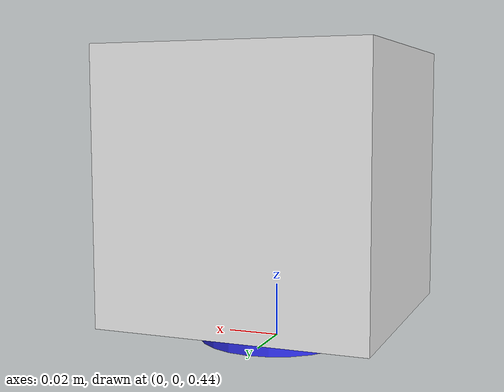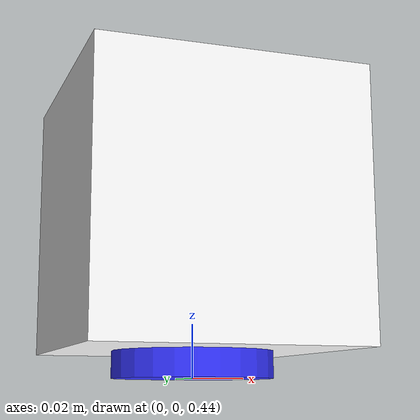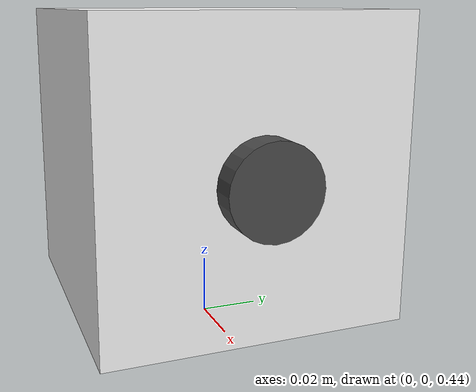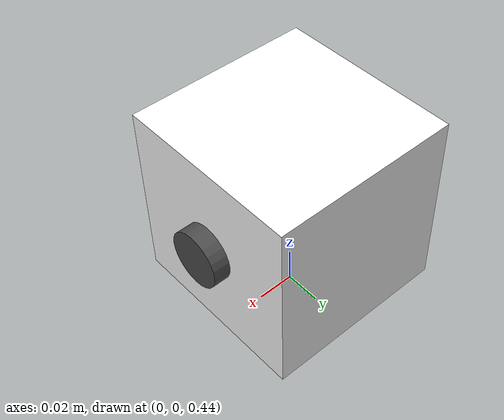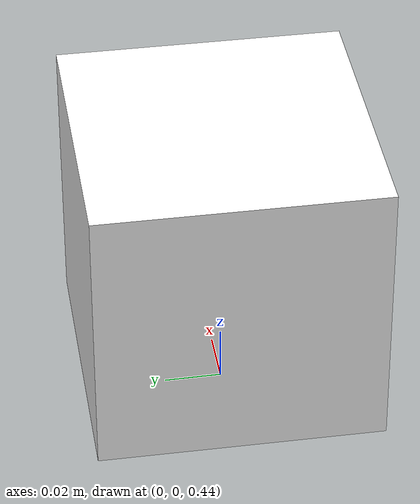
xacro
<?xml version="1.0"?>
<robot xmlns:xacro="http://www.ros.org/wiki/xacro"  name="cubesat">

    <xacro:include filename="cubesat_include.xacro" />

    <link name="world"></link>

    <joint name="1U_joint" type="floating">
    	<origin xyz="0 0 0.5" rpy="0 0 0"/>
    	<parent link="world"/>
    	<child link="1U_link"/>
    </joint>

    <link name="1U_link">
        <visual>
            <origin xyz="0 0 0" rpy="0 0 0"/>
            <geometry>
                <box size="${U_aresta} ${U_aresta} ${U_aresta}" />
            </geometry>
            <material name="white"/>
        </visual>
        <collision>
            <origin xyz="0 0 0" rpy="0 0 0"/>
            <geometry>
                <box size="${U_aresta} ${U_aresta} ${U_aresta}" />
            </geometry>
        </collision>
        <xacro:inertial_box mass="1" x="0.1" y="0.1" z="0.1">
            <origin xyz="0 0 0.0" rpy="0 0 0"/>
        </xacro:inertial_box>
    </link>

    <joint name="camera_joint" type="fixed">
        <origin xyz="${(U_aresta+cam_len)/2} 0 0" rpy="0 0 0"/>
        <parent link="1U_link"/>
        <child link="camera_link"/>
    </joint>

    <link name="camera_link">
        <visual>
            <origin xyz="0 0 0" rpy="0 ${pi/2} 0"/>
            <geometry>
                <cylinder radius="${cam_radius}" length="${cam_len}"/>
            </geometry>
		<material name="gray"/>
        </visual>
        <collision>
            <origin xyz="0 0 0" rpy="0 ${pi/2} 0"/>
            <geometry>
                <cylinder radius="${cam_radius}" length="${cam_len}"/>
            </geometry>
        </collision>
        <xacro:inertial_cylinder mass="${cam_mas}" length="${cam_len}"  radius="${cam_radius}">
            <origin xyz="0 0 0.0" rpy="0 ${pi/2} 0"/>
        </xacro:inertial_cylinder>
    </link>

	<joint name="RDR3_joint" type="continuous">
		<origin xyz="0 0 0" rpy="0 0 0"/>
		<parent link="1U_link"/>
		<child link="RDR3_link"/>
		<axis xyz ="0 0 1" rpy = "0 0 0"/>
		<limit effort="10000" velocity="10000"/>
		<joint_properties damping ="0.0" friction="0.0"/>
	</joint>

    <link name="RDR3_link">
        <visual>
            <origin xyz="0 0 -${(U_aresta+RDR_length)/2}" rpy="0 0 0"/>
		<geometry>
			<cylinder radius="${RDR_radius}" length="${RDR_length}"/>
		</geometry>
	 <material name="blue"/>
        </visual>
        <collision>
            <origin xyz="0 0 -${(U_aresta+RDR_length)/2}" rpy="0 0 0"/>
		<geometry>
			<cylinder radius="${RDR_radius}" length="${RDR_length}"/>
		</geometry>
        </collision>
        <inertial>
            <origin xyz="0 0 -${(U_aresta+RDR_length)/2}" rpy="0 0 0"/>
            <mass value="${RDR_mass}" />
            <inertia ixx="${(1/12) * RDR_mass * (3*RDR_radius*RDR_radius + RDR_length*RDR_length)}" ixy="0.0" ixz="0.0"
                    iyy="${(1/12) * RDR_mass * (3*RDR_radius*RDR_radius + RDR_length*RDR_length)}" iyz="0.0"
                    izz="${(1/2) * RDR_mass * (RDR_radius*RDR_radius)}" />
        </inertial>
    </link>

    <xacro:include filename="cubesat_gazebo.xacro" />
    <xacro:include filename="cubesat_rdr_control.xacro" />

</robot>

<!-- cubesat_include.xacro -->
<robot xmlns:xacro="http://www.ros.org/wiki/xacro" >

    <!-- This file is not a robot in and of itself, it just contains some useful tags that could be included in any robot -->

    <!-- Specify some colours -->

    <material name="white">
        <color rgba="1 1 1 1"/>
    </material>

    <material name="gray">
        <color rgba="0.3 0.3 0.3 1"/>
    </material>

    <material name="orange">
        <color rgba="1 0.3 0.1 1"/>
    </material>

    <material name="blue">
        <color rgba="0.2 0.2 1 1"/>
    </material>

    <material name="green">
        <color rgba="0.2 1 0.2 1"/>
    </material>

    <material name="red">
        <color rgba="1 0.2 0.2 1"/>
    </material>

	<!--Specify properties -->
	<xacro:property name="pi" value="3.14159265359" />
	<xacro:property name="U_aresta" value="0.1" />
    <xacro:property name="U_massa" value="1" />
    <xacro:property name="cam_radius" value="0.015" />
    <xacro:property name="cam_len" value="0.009" />
    <xacro:property name="cam_mas" value="0.003" />
	<xacro:property name="RDR_radius" value="0.03" />
    <xacro:property name="RDR_length" value="0.01" />
    <xacro:property name="RDR_mass" value="0.137" />
    <!-- Specify some standard inertial calculations https://en.wikipedia.org/wiki/List_of_moments_of_inertia -->
    <!-- These make use of xacro's mathematical functionality -->

    <xacro:macro name="inertial_sphere" params="mass radius *origin">
        <inertial>
            <xacro:insert_block name="origin"/>
            <mass value="${mass}" />
            <inertia ixx="${(2/5) * mass * (radius*radius)}" ixy="0.0" ixz="0.0"
                    iyy="${(2/5) * mass * (radius*radius)}" iyz="0.0"
                    izz="${(2/5) * mass * (radius*radius)}" />
        </inertial>
    </xacro:macro>

    <xacro:macro name="inertial_box" params="mass x y z *origin">
        <inertial>
            <xacro:insert_block name="origin"/>
            <mass value="${mass}" />
            <inertia ixx="${(1/12) * mass * (y*y+z*z)}" ixy="0.0" ixz="0.0"
                    iyy="${(1/12) * mass * (x*x+z*z)}" iyz="0.0"
                    izz="${(1/12) * mass * (x*x+y*y)}" />
        </inertial>
    </xacro:macro>

    <xacro:macro name="inertial_cylinder" params="mass length radius *origin">
        <inertial>
            <xacro:insert_block name="origin"/>
            <mass value="${mass}" />
            <inertia ixx="${(1/12) * mass * (3*radius*radius + length*length)}" ixy="0.0" ixz="0.0"
                    iyy="${(1/12) * mass * (3*radius*radius + length*length)}" iyz="0.0"
                    izz="${(1/2) * mass * (radius*radius)}" />
        </inertial>
    </xacro:macro>

</robot>

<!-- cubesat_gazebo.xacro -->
<robot xmlns:xacro="http://www.ros.org/wiki/xacro">

    <gazebo reference="1U_link">
        <material>Gazebo/White</material>
    </gazebo>

     <gazebo reference="RDR3_link">
        <material>Gazebo/Blue</material>
    </gazebo>

    <gazebo reference="camera_link">
        <material>Gazebo/Gray</material>
    </gazebo>

<gazebo>
    <plugin name="gazebo_ros_joint_state_publisher"
        filename="libgazebo_ros_joint_state_publisher.so">
        <update_rate>20</update_rate>
        <joint_name>1U_joint</joint_name>
    </plugin>
</gazebo>

<gazebo>
    <plugin name="gazebo_ros_joint_pose_trajectory"
        filename="libgazebo_ros_joint_pose_trajectory.so">
        <update_rate>2</update_rate>
        <joint_name>1U_joint</joint_name>
    </plugin>
</gazebo>

   <!-- First, create the link and joint for the optical frame -->

    <!-- First, create the link and joint for the optical frame -->

    <joint name="camera_optical_joint" type="fixed">
        <origin xyz="0 0 0" rpy="0 0 0" />
        <parent link="camera_link" />
        <child link="camera_link_optical" />
    </joint>

    <link name="camera_link_optical"></link>

    <!-- Add a gazebo tag for the ORIGINAL camera_link (but in the plugin we reference the optical frame so that ROS can orient things correctly) -->
    <!-- Note that although visualise is set to true, it won't actually visualise the depth camera in gazebo. To see the preview,
            try swapping "depth" to "camera"-->
    <gazebo reference="camera_link">
        <sensor type="camera" name="my_camera">
            <update_rate>20</update_rate>
            <visualize>true</visualize>
            <camera name="cam">
                <vertical_fov>1.3962634</vertical_fov>
                <image>
                    <width>640</width>
                    <height>480</height>
                    <format>R8G8B8</format>
                </image>
                <clip>
                    <near>0.02</near>
                    <far>300</far>
                </clip>
                <noise>
                    <type>gaussian</type>
                    <mean>0.0</mean>
                    <stddev>0.007</stddev>
                </noise>
            </camera>
            <plugin name="camera_controller" filename="libgazebo_ros_camera.so">
                <frame_name>camera_link_optical</frame_name>
                <min_depth>0.1</min_depth>
                <max_depth>500</max_depth>
            </plugin>
        </sensor>
    </gazebo>

    <joint name="imu_joint" type="fixed">
        <origin xyz="0 0 0" rpy="0 0 0" />
        <parent link="1U_link" />
        <child link="imu_link" />
    </joint>

    <link name="imu_link"></link>

  <gazebo reference="1U_link">
    <gravity>true</gravity>
    <sensor name="imu_sensor" type="imu">
      <always_on>true</always_on>
      <update_rate>100</update_rate>
      <visualize>true</visualize>
      <topic>__default_topic__</topic>
      <plugin filename="libgazebo_ros_imu_sensor.so" name="imu_plugin">
        <topicName>imu</topicName>
        <bodyName>imu_link</bodyName>
        <updateRateHZ>10.0</updateRateHZ>
        <gaussianNoise>0.0</gaussianNoise>
        <xyzOffset>0 0 0</xyzOffset>
        <rpyOffset>0 0 0</rpyOffset>
        <frameName>imu_link</frameName>
        <initialOrientationAsReference>false</initialOrientationAsReference>
      </plugin>
      <pose>0 0 0 0 0 0</pose>
    </sensor>
  </gazebo>

</robot>
